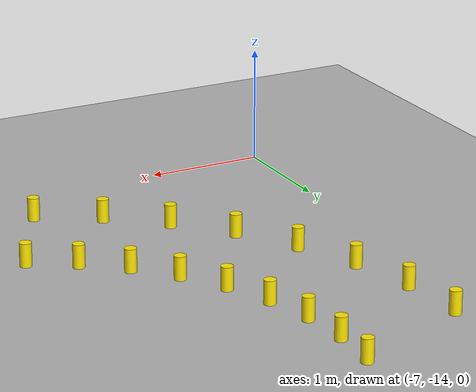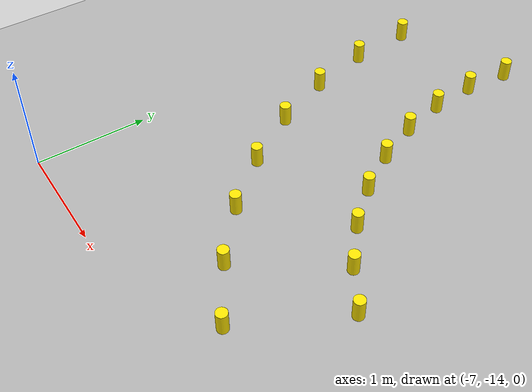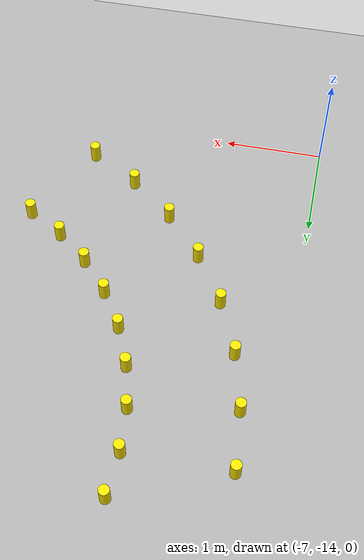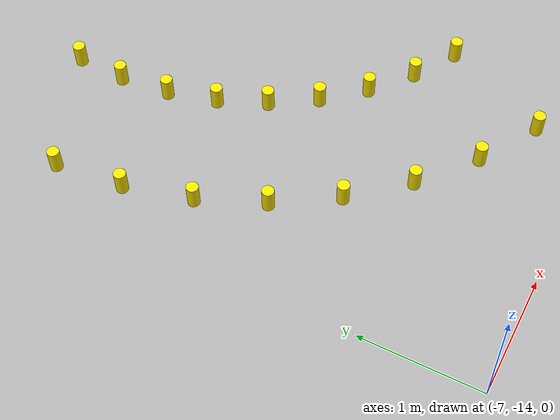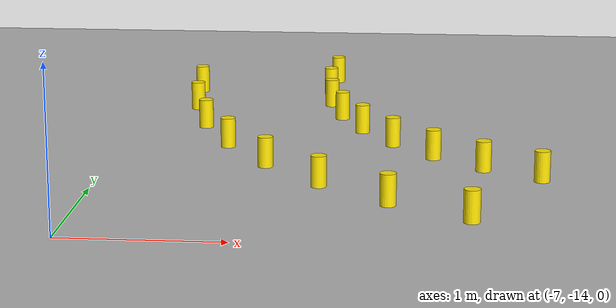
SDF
<sdf version="1.7">
 <world name="cone_lane">
  <model name="ground_plane">
   <static>true</static>
   <link name="link">
    <collision name="collision">
     <geometry><plane><normal>0 0 1</normal><size>150 150</size></plane></geometry>
     <surface><friction><ode><mu>1.0</mu></ode></friction></surface>
    </collision>
    <visual name="visual">
     <geometry><plane><normal>0 0 1</normal><size>100 100</size></plane></geometry>
     <material>
      <ambient>0.55 0.55 0.55 1</ambient>
      <diffuse>0.70 0.70 0.70 1</diffuse>
      <specular>0.05 0.05 0.05 1</specular>
     </material>
    </visual>
   </link>
  </model>
  <model name="cone_L076">
   <static>true</static>
   <pose>-5.672 -9.813 0.1 0 0 0</pose>
   <link name="link">
    <visual name="v">
     <geometry><cylinder><radius>0.05</radius><length>0.2</length></cylinder></geometry>
     <material>
      <ambient>0.9 0.8 0.0 1</ambient>
      <diffuse>1.0 0.9 0.0 1</diffuse>
      <specular>0.2 0.2 0.0 1</specular>
     </material>
    </visual>
    <collision name="c">
     <geometry><cylinder><radius>0.05</radius><length>0.2</length></cylinder></geometry>
    </collision>
   </link>
  </model>
  <model name="cone_L077">
   <static>true</static>
   <pose>-5.700 -10.234 0.1 0 0 0</pose>
   <link name="link">
    <visual name="v">
     <geometry><cylinder><radius>0.05</radius><length>0.2</length></cylinder></geometry>
     <material>
      <ambient>0.9 0.8 0.0 1</ambient>
      <diffuse>1.0 0.9 0.0 1</diffuse>
      <specular>0.2 0.2 0.0 1</specular>
     </material>
    </visual>
    <collision name="c">
     <geometry><cylinder><radius>0.05</radius><length>0.2</length></cylinder></geometry>
    </collision>
   </link>
  </model>
  <model name="cone_L078">
   <static>true</static>
   <pose>-5.662 -10.654 0.1 0 0 0</pose>
   <link name="link">
    <visual name="v">
     <geometry><cylinder><radius>0.05</radius><length>0.2</length></cylinder></geometry>
     <material>
      <ambient>0.9 0.8 0.0 1</ambient>
      <diffuse>1.0 0.9 0.0 1</diffuse>
      <specular>0.2 0.2 0.0 1</specular>
     </material>
    </visual>
    <collision name="c">
     <geometry><cylinder><radius>0.05</radius><length>0.2</length></cylinder></geometry>
    </collision>
   </link>
  </model>
  <model name="cone_L079">
   <static>true</static>
   <pose>-5.558 -11.063 0.1 0 0 0</pose>
   <link name="link">
    <visual name="v">
     <geometry><cylinder><radius>0.05</radius><length>0.2</length></cylinder></geometry>
     <material>
      <ambient>0.9 0.8 0.0 1</ambient>
      <diffuse>1.0 0.9 0.0 1</diffuse>
      <specular>0.2 0.2 0.0 1</specular>
     </material>
    </visual>
    <collision name="c">
     <geometry><cylinder><radius>0.05</radius><length>0.2</length></cylinder></geometry>
    </collision>
   </link>
  </model>
  <model name="cone_L080">
   <static>true</static>
   <pose>-5.393 -11.451 0.1 0 0 0</pose>
   <link name="link">
    <visual name="v">
     <geometry><cylinder><radius>0.05</radius><length>0.2</length></cylinder></geometry>
     <material>
      <ambient>0.9 0.8 0.0 1</ambient>
      <diffuse>1.0 0.9 0.0 1</diffuse>
      <specular>0.2 0.2 0.0 1</specular>
     </material>
    </visual>
    <collision name="c">
     <geometry><cylinder><radius>0.05</radius><length>0.2</length></cylinder></geometry>
    </collision>
   </link>
  </model>
  <model name="cone_L081">
   <static>true</static>
   <pose>-5.168 -11.809 0.1 0 0 0</pose>
   <link name="link">
    <visual name="v">
     <geometry><cylinder><radius>0.05</radius><length>0.2</length></cylinder></geometry>
     <material>
      <ambient>0.9 0.8 0.0 1</ambient>
      <diffuse>1.0 0.9 0.0 1</diffuse>
      <specular>0.2 0.2 0.0 1</specular>
     </material>
    </visual>
    <collision name="c">
     <geometry><cylinder><radius>0.05</radius><length>0.2</length></cylinder></geometry>
    </collision>
   </link>
  </model>
  <model name="cone_L082">
   <static>true</static>
   <pose>-4.891 -12.127 0.1 0 0 0</pose>
   <link name="link">
    <visual name="v">
     <geometry><cylinder><radius>0.05</radius><length>0.2</length></cylinder></geometry>
     <material>
      <ambient>0.9 0.8 0.0 1</ambient>
      <diffuse>1.0 0.9 0.0 1</diffuse>
      <specular>0.2 0.2 0.0 1</specular>
     </material>
    </visual>
    <collision name="c">
     <geometry><cylinder><radius>0.05</radius><length>0.2</length></cylinder></geometry>
    </collision>
   </link>
  </model>
  <model name="cone_L083">
   <static>true</static>
   <pose>-4.568 -12.398 0.1 0 0 0</pose>
   <link name="link">
    <visual name="v">
     <geometry><cylinder><radius>0.05</radius><length>0.2</length></cylinder></geometry>
     <material>
      <ambient>0.9 0.8 0.0 1</ambient>
      <diffuse>1.0 0.9 0.0 1</diffuse>
      <specular>0.2 0.2 0.0 1</specular>
     </material>
    </visual>
    <collision name="c">
     <geometry><cylinder><radius>0.05</radius><length>0.2</length></cylinder></geometry>
    </collision>
   </link>
  </model>
  <model name="cone_L084">
   <static>true</static>
   <pose>-4.206 -12.616 0.1 0 0 0</pose>
   <link name="link">
    <visual name="v">
     <geometry><cylinder><radius>0.05</radius><length>0.2</length></cylinder></geometry>
     <material>
      <ambient>0.9 0.8 0.0 1</ambient>
      <diffuse>1.0 0.9 0.0 1</diffuse>
      <specular>0.2 0.2 0.0 1</specular>
     </material>
    </visual>
    <collision name="c">
     <geometry><cylinder><radius>0.05</radius><length>0.2</length></cylinder></geometry>
    </collision>
   </link>
  </model>
  <model name="cone_R077">
   <static>true</static>
   <pose>-6.700 -10.246 0.1 0 0 0</pose>
   <link name="link">
    <visual name="v">
     <geometry><cylinder><radius>0.05</radius><length>0.2</length></cylinder></geometry>
     <material>
      <ambient>0.9 0.8 0.0 1</ambient>
      <diffuse>1.0 0.9 0.0 1</diffuse>
      <specular>0.2 0.2 0.0 1</specular>
     </material>
    </visual>
    <collision name="c">
     <geometry><cylinder><radius>0.05</radius><length>0.2</length></cylinder></geometry>
    </collision>
   </link>
  </model>
  <model name="cone_R078">
   <static>true</static>
   <pose>-6.647 -10.822 0.1 0 0 0</pose>
   <link name="link">
    <visual name="v">
     <geometry><cylinder><radius>0.05</radius><length>0.2</length></cylinder></geometry>
     <material>
      <ambient>0.9 0.8 0.0 1</ambient>
      <diffuse>1.0 0.9 0.0 1</diffuse>
      <specular>0.2 0.2 0.0 1</specular>
     </material>
    </visual>
    <collision name="c">
     <geometry><cylinder><radius>0.05</radius><length>0.2</length></cylinder></geometry>
    </collision>
   </link>
  </model>
  <model name="cone_R079">
   <static>true</static>
   <pose>-6.506 -11.383 0.1 0 0 0</pose>
   <link name="link">
    <visual name="v">
     <geometry><cylinder><radius>0.05</radius><length>0.2</length></cylinder></geometry>
     <material>
      <ambient>0.9 0.8 0.0 1</ambient>
      <diffuse>1.0 0.9 0.0 1</diffuse>
      <specular>0.2 0.2 0.0 1</specular>
     </material>
    </visual>
    <collision name="c">
     <geometry><cylinder><radius>0.05</radius><length>0.2</length></cylinder></geometry>
    </collision>
   </link>
  </model>
  <model name="cone_R080">
   <static>true</static>
   <pose>-6.279 -11.915 0.1 0 0 0</pose>
   <link name="link">
    <visual name="v">
     <geometry><cylinder><radius>0.05</radius><length>0.2</length></cylinder></geometry>
     <material>
      <ambient>0.9 0.8 0.0 1</ambient>
      <diffuse>1.0 0.9 0.0 1</diffuse>
      <specular>0.2 0.2 0.0 1</specular>
     </material>
    </visual>
    <collision name="c">
     <geometry><cylinder><radius>0.05</radius><length>0.2</length></cylinder></geometry>
    </collision>
   </link>
  </model>
  <model name="cone_R081">
   <static>true</static>
   <pose>-5.971 -12.405 0.1 0 0 0</pose>
   <link name="link">
    <visual name="v">
     <geometry><cylinder><radius>0.05</radius><length>0.2</length></cylinder></geometry>
     <material>
      <ambient>0.9 0.8 0.0 1</ambient>
      <diffuse>1.0 0.9 0.0 1</diffuse>
      <specular>0.2 0.2 0.0 1</specular>
     </material>
    </visual>
    <collision name="c">
     <geometry><cylinder><radius>0.05</radius><length>0.2</length></cylinder></geometry>
    </collision>
   </link>
  </model>
  <model name="cone_R082">
   <static>true</static>
   <pose>-5.592 -12.841 0.1 0 0 0</pose>
   <link name="link">
    <visual name="v">
     <geometry><cylinder><radius>0.05</radius><length>0.2</length></cylinder></geometry>
     <material>
      <ambient>0.9 0.8 0.0 1</ambient>
      <diffuse>1.0 0.9 0.0 1</diffuse>
      <specular>0.2 0.2 0.0 1</specular>
     </material>
    </visual>
    <collision name="c">
     <geometry><cylinder><radius>0.05</radius><length>0.2</length></cylinder></geometry>
    </collision>
   </link>
  </model>
  <model name="cone_R083">
   <static>true</static>
   <pose>-5.148 -13.212 0.1 0 0 0</pose>
   <link name="link">
    <visual name="v">
     <geometry><cylinder><radius>0.05</radius><length>0.2</length></cylinder></geometry>
     <material>
      <ambient>0.9 0.8 0.0 1</ambient>
      <diffuse>1.0 0.9 0.0 1</diffuse>
      <specular>0.2 0.2 0.0 1</specular>
     </material>
    </visual>
    <collision name="c">
     <geometry><cylinder><radius>0.05</radius><length>0.2</length></cylinder></geometry>
    </collision>
   </link>
  </model>
  <model name="cone_R084">
   <static>true</static>
   <pose>-4.653 -13.510 0.1 0 0 0</pose>
   <link name="link">
    <visual name="v">
     <geometry><cylinder><radius>0.05</radius><length>0.2</length></cylinder></geometry>
     <material>
      <ambient>0.9 0.8 0.0 1</ambient>
      <diffuse>1.0 0.9 0.0 1</diffuse>
      <specular>0.2 0.2 0.0 1</specular>
     </material>
    </visual>
    <collision name="c">
     <geometry><cylinder><radius>0.05</radius><length>0.2</length></cylinder></geometry>
    </collision>
   </link>
  </model>
 </world>
</sdf>
